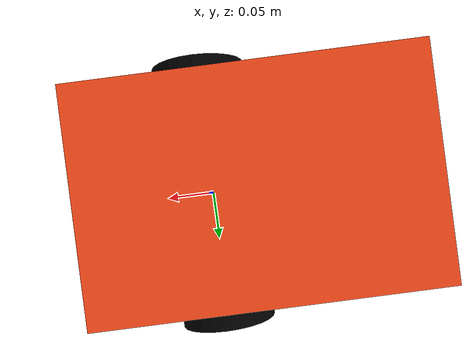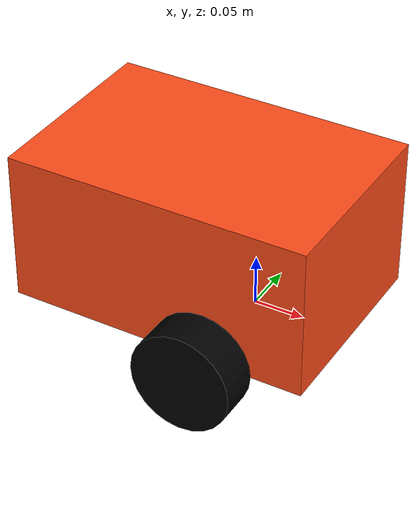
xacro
<?xml version="1.0"?>
<robot xmlns:xacro="http://www.ros.org/wiki/xacro">

    <xacro:include filename="inertial_macros.xacro"/>

    <material name="white">
        <color rgba="1.0 1.0 1.0 1.0"/>
    </material>
    <material name="orange">
        <color rgba="1.0 0.3 0.1 1.0"/>
    </material>
    <material name="blue">
        <color rgba="0.2 0.2 1.0 1.0"/>
    </material>
    <material name="black">
        <color rgba="0.0 0.0 0.0 1.0"/>
    </material>
    <material name="red">
        <color rgba="1.0 0.0 0.0 1.0"/>
    </material>

    <!-- BASE LINK -->

    <link name="base_link">

    </link>

    <!-- CHASSIS LINK -->

    <joint name="chassis_joint" type="fixed">
        <parent link="base_link"/>
        <child link="chassis_link"/>
        <origin xyz="0.1 0.0 0.0"/>
    </joint>

    <link name="chassis_link">
        <visual>
            <origin xyz="-0.15 0.0 0.075"/>
            <geometry>
                <box size="0.3 0.2 0.15"/>
            </geometry>
            <material name="orange">

            </material>
        </visual>
        <collision>
            <origin xyz="-0.15 0.0 0.075"/>
            <geometry>
                <box size="0.3 0.2 0.15"/>
            </geometry>
        </collision>
        <xacro:inertial_box mass="0.5" x="0.3" y="0.2" z="0.15">
            <origin xyz="-0.15 0.0 0.075" rpy="0.0 0.0 0.0"/>
        </xacro:inertial_box>
    </link>

    <gazebo reference="chassis_link">
        <material>Gazebo/Orange</material>
    </gazebo>

    <!-- LEFT WHEEL LINK -->

    <joint name="left_wheel_joint" type="continuous">
        <parent link="base_link"/>
        <child link="left_wheel_link"/>
        <origin xyz="0.0 0.12 0.0" rpy="-${pi/2} 0.0 0.0"/>
        <axis xyz="0.0 0.0 1.0"/>
    </joint>

    <link name="left_wheel_link">
        <visual>
            <geometry>
                <cylinder radius="0.05" length="0.04"/>
            </geometry>
            <material name="black">

            </material>
        </visual>
        <collision>
            <geometry>
                <cylinder radius="0.05" length="0.04"/>
            </geometry>
        </collision>
        <xacro:inertial_cylinder mass="0.1" length="0.04" radius="0.05">
            <origin xyz="0.0 0.0 0.0" rpy="0.0 0.0 0.0"/>
        </xacro:inertial_cylinder>
    </link>

    <gazebo reference="left_wheel_link">
        <material>Gazebo/Black</material>
    </gazebo>

    <!-- RIGHT WHEEL LINK -->

    <joint name="right_wheel_joint" type="continuous">
        <parent link="base_link"/>
        <child link="right_wheel_link"/>
        <origin xyz="0.0 -0.12 0.0" rpy="${pi/2} 0.0 0.0"/>
        <axis xyz="0.0 0.0 -1.0"/>
    </joint>

    <link name="right_wheel_link">
        <visual>
            <geometry>
                <cylinder radius="0.05" length="0.04"/>
            </geometry>
            <material name="black">

            </material>
        </visual>
        <collision>
            <geometry>
                <cylinder radius="0.05" length="0.04"/>
            </geometry>
        </collision>
        <xacro:inertial_cylinder mass="0.1" length="0.04" radius="0.05">
            <origin xyz="0.0 0.0 0.0" rpy="0.0 0.0 0.0"/>
        </xacro:inertial_cylinder>
    </link>

    <gazebo reference="right_wheel_link">
        <material>Gazebo/Black</material>
    </gazebo>

    <!-- CASTER WHEEL LINK -->

    <joint name="caster_wheel_joint" type="fixed">
        <parent link="chassis_link"/>
        <child link="caster_wheel_link"/>
        <origin xyz="-0.25 0.0 0.0"/>
    </joint>

    <link name="caster_wheel_link">
        <visual>
            <geometry>
                <sphere radius="0.05"/>
            </geometry>
            <material name="black">

            </material>
        </visual>
        <collision>
            <geometry>
                <sphere radius="0.05"/>
            </geometry>
        </collision>
        <xacro:inertial_sphere mass="0.1" radius="0.05">
            <origin xyz="0.0 0.0 0.0" rpy="0.0 0.0 0.0"/>
        </xacro:inertial_sphere>
    </link>

    <gazebo reference="caster_wheel_link">
        <material>Gazebo/Black</material>
        <mu1 value="0.001"/>
        <mu2 value="0.001"/>
    </gazebo>

</robot>
